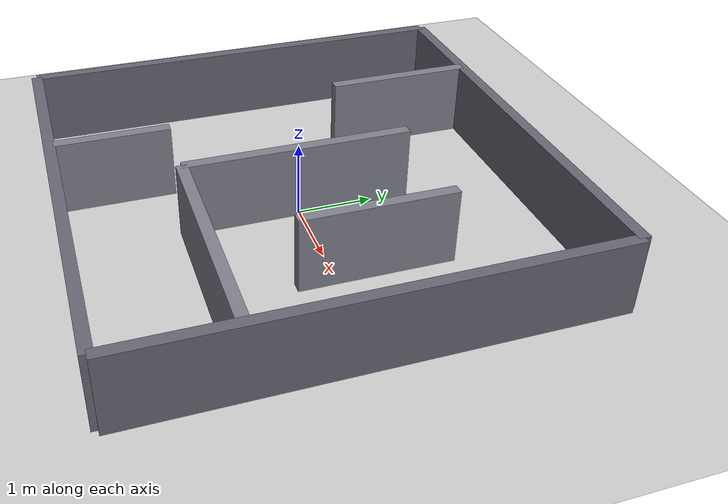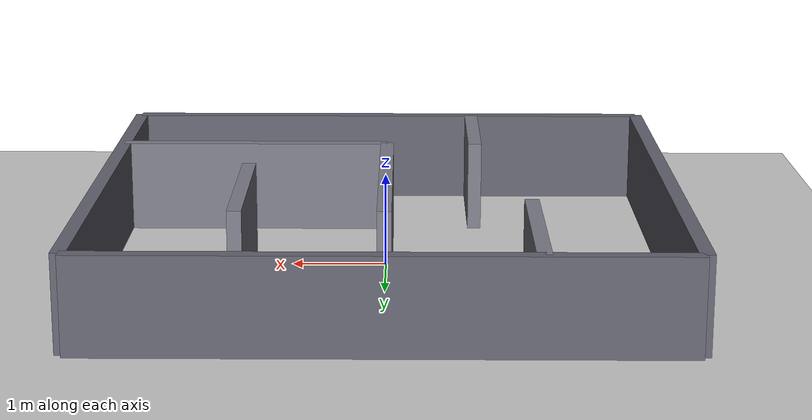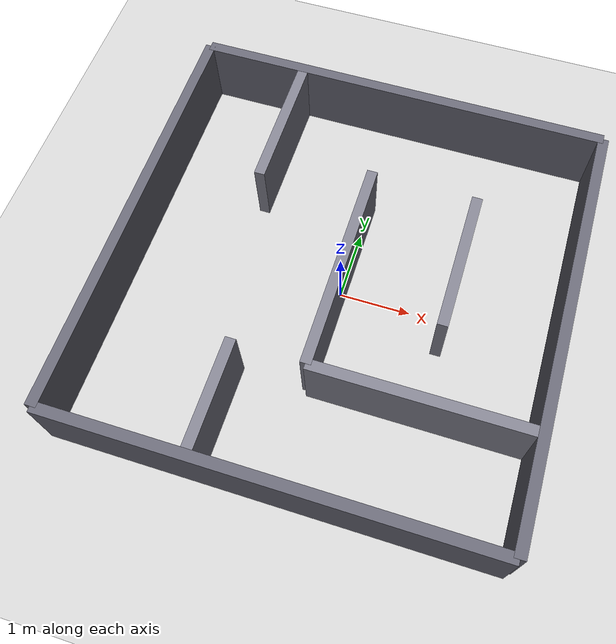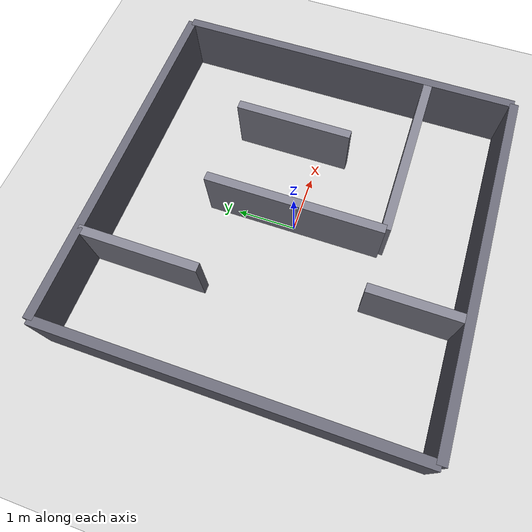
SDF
<?xml version="1.0"?>
<sdf version="1.8">
  <world name="maze05_world">
    <physics type="ode">
      <real_time_update_rate>1000.0</real_time_update_rate>
      <max_step_size>0.001</max_step_size>
      <real_time_factor>1</real_time_factor>
      <ode>
        <solver>
          <type>quick</type>
          <iters>150</iters>
          <precon_iters>0</precon_iters>
          <sor>1.400000</sor>
          <use_dynamic_moi_rescaling>1</use_dynamic_moi_rescaling>
        </solver>
        <constraints>
          <cfm>0.00001</cfm>
          <erp>0.2</erp>
          <contact_max_correcting_vel>2000.000000</contact_max_correcting_vel>
          <contact_surface_layer>0.01000</contact_surface_layer>
        </constraints>
      </ode>
    </physics>
    <plugin
      filename="gz-sim-physics-system"
      name="gz::sim::systems::Physics">
    </plugin>
    <plugin
      filename="gz-sim-user-commands-system"
      name="gz::sim::systems::UserCommands">
    </plugin>
    <plugin
      filename="gz-sim-scene-broadcaster-system"
      name="gz::sim::systems::SceneBroadcaster">
    </plugin>
    <plugin
      filename="gz-sim-sensors-system"
      name="gz::sim::systems::Sensors">
      <render_engine>ogre2</render_engine>
    </plugin>
    <plugin
      filename="gz-sim-imu-system"
      name="gz::sim::systems::Imu">
    </plugin>

    <include>
      <uri>https://fuel.gazebosim.org/1.0/OpenRobotics/models/Ground Plane</uri>
    </include>

    <include>
      <uri>https://fuel.gazebosim.org/1.0/OpenRobotics/models/Sun</uri>
    </include>

    <!-- ===== MAZE 05: 6m x 6m WITH INTERNAL WALLS ===== -->
    <!-- Arena: width=6 (x from -3..3), height=6 (y from -3..3) -->
    <!-- Walls: thickness=0.15, height=1.0 (z) -->

    <!-- ===== OUTER BOUNDARY ===== -->
    <!-- Top wall -->
    <model name="outer_top" static="true">
      <pose>0 3 0.5 0 0 0</pose>
      <link name="link">
        <collision name="col"><geometry><box><size>6 0.15 1.0</size></box></geometry></collision>
        <visual name="vis"><geometry><box><size>6 0.15 1.0</size></box></geometry>
          <material><ambient>0.4 0.4 0.45 1</ambient></material></visual>
      </link>
    </model>

    <!-- Bottom wall -->
    <model name="outer_bottom" static="true">
      <pose>0 -3 0.5 0 0 0</pose>
      <link name="link">
        <collision name="col"><geometry><box><size>6 0.15 1.0</size></box></geometry></collision>
        <visual name="vis"><geometry><box><size>6 0.15 1.0</size></box></geometry>
          <material><ambient>0.4 0.4 0.45 1</ambient></material></visual>
      </link>
    </model>

    <!-- Left wall -->
    <model name="outer_left" static="true">
      <pose>-3 0 0.5 0 0 0</pose>
      <link name="link">
        <collision name="col"><geometry><box><size>0.15 6 1.0</size></box></geometry></collision>
        <visual name="vis"><geometry><box><size>0.15 6 1.0</size></box></geometry>
          <material><ambient>0.4 0.4 0.45 1</ambient></material></visual>
      </link>
    </model>

    <!-- Right wall -->
    <model name="outer_right" static="true">
      <pose>3 0 0.5 0 0 0</pose>
      <link name="link">
        <collision name="col"><geometry><box><size>0.15 6 1.0</size></box></geometry></collision>
        <visual name="vis"><geometry><box><size>0.15 6 1.0</size></box></geometry>
          <material><ambient>0.4 0.4 0.45 1</ambient></material></visual>
      </link>
    </model>

    <!-- ===== INTERNAL WALLS ===== -->
    <!-- Central vertical wall (blocks direct path) -->
    <model name="wall_center_vertical" static="true">
      <pose>0 0 0.5 0 0 0</pose>
      <link name="link">
        <collision name="col"><geometry><box><size>0.15 3 1.0</size></box></geometry></collision>
        <visual name="vis"><geometry><box><size>0.15 3 1.0</size></box></geometry>
          <material><ambient>0.5 0.5 0.55 1</ambient></material></visual>
      </link>
    </model>

    <!-- Top horizontal wall (left side) -->

    <!-- Bottom horizontal wall (right side) -->
    <model name="wall_bottom_right" static="true">
      <pose>1.5 -1.5 0.5 0 0 0</pose>
      <link name="link">
        <collision name="col"><geometry><box><size>3 0.15 1.0</size></box></geometry></collision>
        <visual name="vis"><geometry><box><size>3 0.15 1.0</size></box></geometry>
          <material><ambient>0.5 0.5 0.55 1</ambient></material></visual>
      </link>
    </model>

    <!-- Left vertical wall (creates L-shape obstacle) -->
    <model name="wall_left_vertical" static="true">
      <pose>-1.5 2 0.5 0 0 0</pose>
      <link name="link">
        <collision name="col"><geometry><box><size>0.15 2 1.0</size></box></geometry></collision>
        <visual name="vis"><geometry><box><size>0.15 2 1.0</size></box></geometry>
          <material><ambient>0.5 0.5 0.55 1</ambient></material></visual>
      </link>
    </model>

    <!-- Right vertical wall (creates L-shape obstacle) -->
    <model name="wall_right_vertical" static="true">
      <pose>1.5 0.5 0.5 0 0 0</pose>
      <link name="link">
        <collision name="col"><geometry><box><size>0.15 2 1.0</size></box></geometry></collision>
        <visual name="vis"><geometry><box><size>0.15 2 1.0</size></box></geometry>
          <material><ambient>0.5 0.5 0.55 1</ambient></material></visual>
      </link>
    </model>

    <!-- Small obstacle wall near start -->
    <model name="wall_start_obstacle" static="true">
      <pose>-1.0 -2.2 0.5 0 0 0</pose>
      <link name="link">
        <collision name="col"><geometry><box><size>0.15 1.5 1.0</size></box></geometry></collision>
        <visual name="vis"><geometry><box><size>0.15 1.5 1.0</size></box></geometry>
          <material><ambient>0.5 0.5 0.55 1</ambient></material></visual>
      </link>
    </model>

    <!-- Small obstacle wall near finish -->

    <gui fullscreen='0'>
      <camera name='user_camera'>
        <pose frame=''>0 0 10 0 1.57 0</pose>
        <view_controller>orbit</view_controller>
        <projection_type>perspective</projection_type>
      </camera>
    </gui>
  </world>
</sdf>
